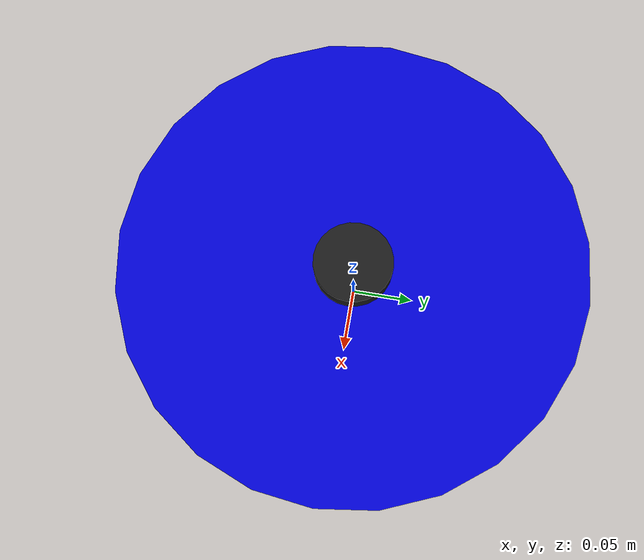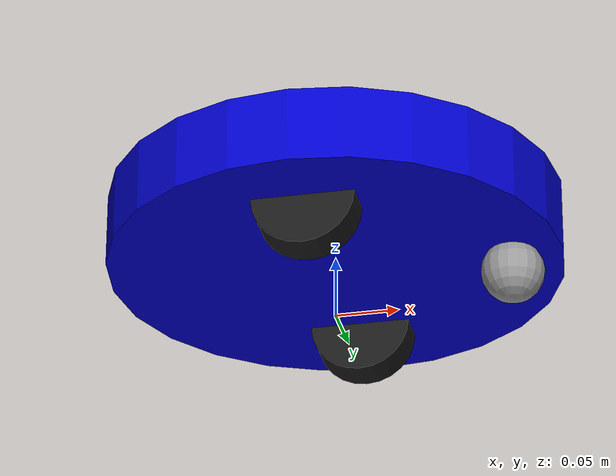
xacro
<?xml version="1.0"?>
<robot name="ev_hizmet_robotu" xmlns:xacro="http://www.ros.org/wiki/xacro">

  <xacro:property name="base_radius" value="0.18"/>
  <xacro:property name="base_height" value="0.06"/>
  <xacro:property name="wheel_radius" value="0.04"/>
  <xacro:property name="wheel_width" value="0.03"/>
  <xacro:property name="wheel_separation" value="0.22"/>
  <xacro:property name="caster_radius" value="0.025"/>

  <material name="blue"><color rgba="0 0 0.8 1"/></material>
  <material name="black"><color rgba="0.1 0.1 0.1 1"/></material>
  <material name="grey"><color rgba="0.6 0.6 0.6 1"/></material>
  <!-- robotun zemine temas noktası -->
  <link name="base_footprint"/>

  <joint name="base_footprint_joint" type="fixed">
    <parent link="base_footprint"/>
    <child link="base_link"/>
    <origin xyz="0 0 ${wheel_radius}" rpy="0 0 0"/>
  </joint>
  <!-- robotun gövdesi.joint ile birbirine bağlanmış ve yükseklik olarak tekerlek yarıçapı kadar yukarıda. -->
  <link name="base_link">
    <!-- visual → Gazebo veya RViz’de görünen şekil (silindir). -->
    <visual>
      <origin xyz="0 0 ${base_height/2}"/>
      <geometry><cylinder radius="${base_radius}" length="${base_height}"/></geometry>
      <material name="blue"/>
    </visual>
    <!-- collision → Fizik simülasyonunda çarpışma modeli. -->
    <collision>
      <origin xyz="0 0 ${base_height/2}"/>
      <geometry><cylinder radius="${base_radius}" length="${base_height}"/></geometry>
    </collision>
    <!-- inertial → Kütle ve eylemsizlik (fizik simülasyonu için). -->
    <inertial>
      <origin xyz="0 0 0.01"/>
      <mass value="1.0"/> <inertia
        ixx="0.01" ixy="0" ixz="0"
        iyy="0.01" iyz="0"
        izz="0.02"/>
    </inertial>
  </link>
  <!-- wheel makrosu → tekerlek ve sürekli dönen eklemi tanımlar.
    y_reflect → sol/sağ ayrımı (y ekseninde simetri). -->
  <xacro:macro name="wheel" params="prefix y_reflect">
    <link name="${prefix}_wheel">
      <visual>
        <origin rpy="${pi/2} 0 0" xyz="0 0 0"/>
        <geometry><cylinder radius="${wheel_radius}" length="${wheel_width}"/></geometry>
        <material name="black"/>
      </visual>
      <collision>
        <origin rpy="${pi/2} 0 0" xyz="0 0 0"/>
        <geometry><cylinder radius="${wheel_radius}" length="${wheel_width}"/></geometry>
      </collision>
      <inertial>
        <mass value="0.5"/>
        <inertia ixx="0.001" ixy="0" ixz="0" iyy="0.001" iyz="0" izz="0.001"/>
      </inertial>
    </link>

    <joint name="${prefix}_wheel_joint" type="continuous">
      <parent link="base_link"/>
      <child link="${prefix}_wheel"/>
      <origin xyz="0 ${y_reflect * wheel_separation/2} 0" rpy="0 0 0"/>
      <axis xyz="0 1 0"/>
    </joint>
  </xacro:macro>

  <xacro:wheel prefix="left" y_reflect="1"/>
  <xacro:wheel prefix="right" y_reflect="-1"/>

  <link name="caster_wheel">
    <visual>
      <geometry><sphere radius="${caster_radius}"/></geometry>
      <material name="grey"/>
    </visual>
    <collision>
      <geometry><sphere radius="${caster_radius}"/></geometry>
    </collision>
    <inertial>
      <mass value="0.2"/>
      <inertia ixx="0.0001" ixy="0" ixz="0" iyy="0.0001" iyz="0" izz="0.0001"/>
    </inertial>
  </link>

  <joint name="caster_joint" type="fixed">
    <parent link="base_link"/>
    <child link="caster_wheel"/>
    <origin xyz="0.14 0 -0.016" rpy="0 0 0"/>
  </joint>

  <link name="lidar_link">
    <visual>
      <geometry><cylinder radius="0.03" length="0.02"/></geometry>
      <material name="black"/>
    </visual>
  </link>

  <joint name="lidar_joint" type="fixed">
    <parent link="base_link"/>
    <child link="lidar_link"/>
    <origin xyz="0 0 0.07"/>
  </joint>

  <gazebo reference="lidar_link">
    <sensor name="lidar_sensor" type="gpu_lidar">
      <gz_frame_id>lidar_link</gz_frame_id>
      <always_on>true</always_on>
      <visualize>true</visualize>
      <update_rate>30</update_rate>
      <topic>scan</topic>
      <lidar>
        <scan>
          <horizontal>
            <samples>360</samples> <min_angle>-3.14</min_angle>
            <max_angle>3.14</max_angle>
          </horizontal>
        </scan>
        <range>
          <min>0.15</min>
          <max>10.0</max>
        </range>
      </lidar>
    </sensor>
  </gazebo>
  <gazebo reference="caster_wheel">
    <mu1 value="0.0"/>
    <mu2 value="0.0"/>
    <kp value="1000000.0"/>
    <kd value="10.0"/>
  </gazebo>
 <gazebo reference="left_wheel">
    <mu1 value="0.1"/> <mu2 value="0.1"/>
    <kp value="1000000.0"/>
    <kd value="10.0"/>
  </gazebo>

  <gazebo reference="right_wheel">
    <mu1 value="0.1"/>
    <mu2 value="0.1"/>
    <kp value="1000000.0"/>
    <kd value="10.0"/>
  </gazebo>
  <gazebo reference="base_link">
    <mu1 value="0.1"/>
    <mu2 value="0.1"/>
  </gazebo>
  <!-- Gazebo’da robotun differential drive (iki tekerlekli) sürüşünü simüle eder. -->
  <!-- cmd_vel → hız komutlarını alır.
       odom → odometriyi yayınlar.
       TF → robotun frame’lerini günceller -->
  <gazebo>
    <plugin filename="gz-sim-diff-drive-system" name="gz::sim::systems::DiffDrive">
      <left_joint>left_wheel_joint</left_joint>
      <right_joint>right_wheel_joint</right_joint>
      <wheel_separation>0.22</wheel_separation>
      <wheel_radius>0.04</wheel_radius>
      <odom_publish_frequency>30</odom_publish_frequency>
      <topic>cmd_vel</topic>
      <odom_topic>odom</odom_topic>
      <tf_topic>/tf</tf_topic>
      <frame_id>odom</frame_id>
      <child_frame_id>base_footprint</child_frame_id>
    </plugin>
  </gazebo>
</robot>
